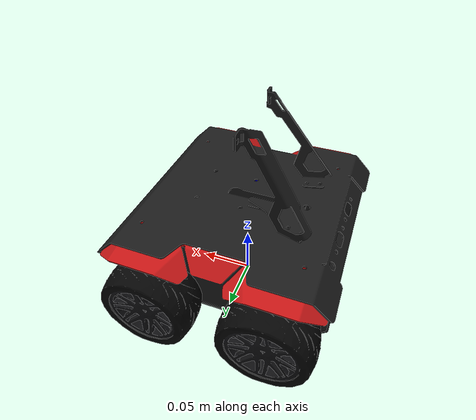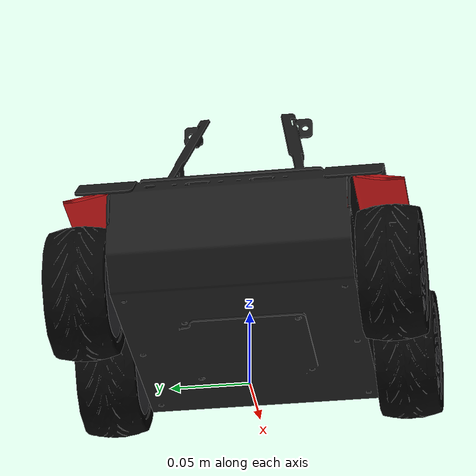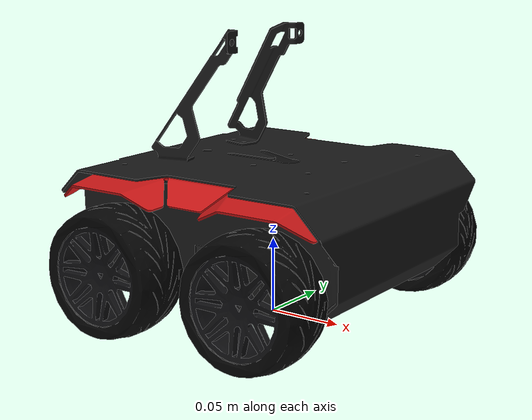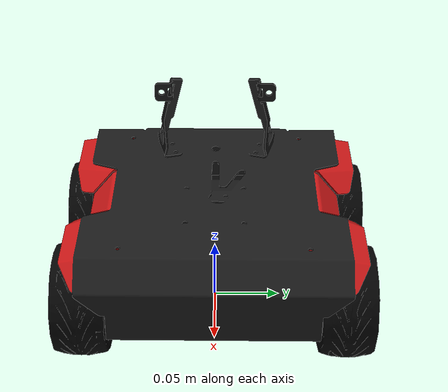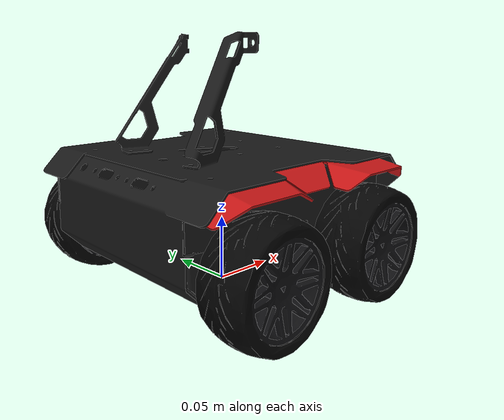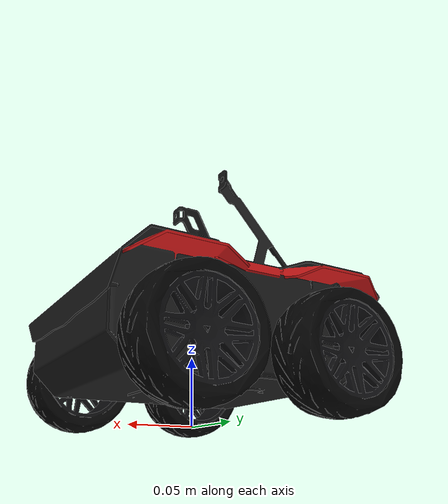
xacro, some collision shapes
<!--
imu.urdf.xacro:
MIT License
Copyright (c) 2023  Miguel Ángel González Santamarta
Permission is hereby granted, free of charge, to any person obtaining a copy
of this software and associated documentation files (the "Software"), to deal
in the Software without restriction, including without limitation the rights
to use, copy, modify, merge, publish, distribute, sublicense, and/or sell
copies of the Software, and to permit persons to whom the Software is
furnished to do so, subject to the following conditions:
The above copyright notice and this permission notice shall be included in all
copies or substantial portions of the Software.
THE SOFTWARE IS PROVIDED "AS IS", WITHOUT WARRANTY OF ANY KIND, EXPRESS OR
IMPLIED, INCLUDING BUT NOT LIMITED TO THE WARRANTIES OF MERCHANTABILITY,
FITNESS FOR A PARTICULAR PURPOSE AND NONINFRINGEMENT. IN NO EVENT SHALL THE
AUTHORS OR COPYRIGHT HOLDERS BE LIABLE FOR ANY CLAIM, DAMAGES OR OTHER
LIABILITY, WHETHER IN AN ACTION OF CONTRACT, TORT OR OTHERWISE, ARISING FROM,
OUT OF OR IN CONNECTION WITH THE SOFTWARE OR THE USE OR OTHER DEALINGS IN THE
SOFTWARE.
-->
<?xml version='1.0'?>
<robot name="diff" xmlns:xacro="http://www.ros.org/wiki/xacro">
  <material name="blue"><color rgba="0 0 1 1" /></material>
  <!-- PROPERTIES -->
  <xacro:property name="wheel_radius" value="0.0425" />

  <!-- INCLUDE ROBOT MACRO -->
  <xacro:include filename="ros2_control.urdf.xacro"/>
  <xacro:include filename="body.urdf.xacro"/>
  <xacro:include filename="wheel.urdf.xacro"/>

  <!-- BODY -->
  <xacro:body wheel_radius="${wheel_radius}"/>

  <!-- WHEEL -->
  <xacro:wheel wheel_radius="${wheel_radius}" side="fl"/>
  <xacro:wheel wheel_radius="${wheel_radius}" side="fr"/>
  <xacro:wheel wheel_radius="${wheel_radius}" side="rl"/>
  <xacro:wheel wheel_radius="${wheel_radius}" side="rr"/>

  <!-- GAZEBO PLUGINS -->
  <xacro:gz_diffbot_system/>
  <xacro:controller config_file="diff" />
</robot>

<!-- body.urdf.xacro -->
<robot xmlns:xacro="http://www.ros.org/wiki/xacro">
  <!-- body defining macro -->
  <xacro:macro name="body" params="wheel_radius">
    <xacro:include filename="../common/sensors/imu.urdf.xacro"/>
    <xacro:include filename="../common/sensors/asus_xtion.urdf.xacro"/>
    <xacro:include filename="../common/sensors/hokuyo.urdf.xacro"/>

    <link name="base_footprint" />
    <joint name="base_footprint_joint" type="fixed">
      <parent link="base_footprint" />
      <child link="base_link" />
    </joint>
    <link name="base_link" />

    <joint name="base_to_body_joint" type="fixed">
      <origin xyz="0.0 0.0 ${wheel_radius}" rpy="0.0 0.0 0.0" />
      <parent link="base_link" />
      <child link="body_link" />
    </joint>

    <link name="body_link">
      <visual>
        <origin xyz="0.0 0.0 -0.0173" rpy="${pi/2} 0.0 ${pi/2}" />
        <geometry>
          <mesh filename="file://$(find test_environment)/meshes/diff/body.dae" scale="0.001 0.001 0.001" />
        </geometry>
      </visual>

      <collision>
        <geometry>
          <box size="0.197 0.150 0.080" />
        </geometry>
        <origin xyz="0.0 0.0 ${0.040 - 0.02}" rpy="0.0 0.0 0.0" />
      </collision>

      <inertial>
        <mass value="1.728" />
        <inertia ixx="0.004162" ixy="0.0"     ixz="0.0"
                                iyy="0.00651" iyz="0.0"
                                              izz="0.008828" />
        <origin xyz="0.0 0.0 ${0.040 - 0.02}" rpy="0.0 0.0 0.0" />
      </inertial>
    </link>

    <joint name="body_to_cover_joint" type="fixed">
      <origin xyz="0.0 0.0 0.0603" rpy="0.0 0.0 0.0" />
      <parent link="body_link" />
      <child link="cover_link" />
    </joint>

    <link name="cover_link" />

    <xacro:sensor_hokuyo prefix="laser" parent="body_link">
      <origin xyz="0.07 0 0.08" rpy="0 0 0"/>
    </xacro:sensor_hokuyo>
    <xacro:sensor_imu prefix="imu" parent="body_link">
        <origin xyz="0.003 -0.0495 0.04332" rpy="0.0 0.0 0.0" />
    </xacro:sensor_imu>

  </xacro:macro>
</robot>

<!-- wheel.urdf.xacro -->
<robot xmlns:xacro="http://www.ros.org/wiki/xacro">
  <!-- wheel defining macro -->
  <xacro:macro name="wheel" params="side wheel_radius">

    <xacro:property name="wheel_separation_x" value="0.106" />

    <xacro:property name="wheel_file" value="wheel" />
    <xacro:property name="wheel_thickness" value="0.036" />
    <xacro:property name="mass" value="0.074" />

    <xacro:property name="ixx" value="0.000041" />
    <xacro:property name="iyy" value="0.000067" />
    <xacro:property name="izz" value="0.000041" />

    <xacro:property name="wheel_separation_y" value="0.192" />

    <xacro:if value="${side == 'fl'}">
      <xacro:property name="x" value="${wheel_separation_x/2.0}" />
      <xacro:property name="y" value="${wheel_separation_y/2.0}" />
      <xacro:property name="mesh" value="file://$(find test_environment)/meshes/diff/${wheel_file}_l.dae" />
      <xacro:property name="visual_rotation" value="${pi/2} 0.0 0.0" />
      <xacro:property name="fdir" value="1.0 -1.0 0.0" />
    </xacro:if>
    <xacro:if value="${side == 'fr'}">
      <xacro:property name="x" value="${wheel_separation_x/2.0}" />
      <xacro:property name="y" value="${-wheel_separation_y/2.0}" />
      <xacro:property name="mesh" value="file://$(find test_environment)/meshes/diff/${wheel_file}_r.dae" />
      <xacro:property name="visual_rotation" value="${pi/2} 0.0 0.0" />
      <xacro:property name="fdir" value="1.0 1.0 0.0" />
    </xacro:if>
    <xacro:if value="${side == 'rl'}">
      <xacro:property name="x" value="${-wheel_separation_x/2.0}" />
      <xacro:property name="y" value="${wheel_separation_y/2.0}" />
      <xacro:property name="mesh" value="file://$(find test_environment)/meshes/diff/${wheel_file}_l.dae" />
      <xacro:property name="visual_rotation" value="${pi/2} 0.0 0.0" />
      <xacro:property name="fdir" value="1.0 1.0 0.0" />
    </xacro:if>
    <xacro:if value="${side == 'rr'}">
      <xacro:property name="x" value="${-wheel_separation_x/2.0}" />
      <xacro:property name="y" value="${-wheel_separation_y/2.0}" />
      <xacro:property name="mesh" value="file://$(find test_environment)/meshes/diff/${wheel_file}_r.dae" />
      <xacro:property name="visual_rotation" value="${pi/2} 0.0 0.0" />
      <xacro:property name="fdir" value="1.0 -1.0 0.0" />
    </xacro:if>

    <joint name="${side}_wheel_joint" type="continuous">
      <parent link="body_link" />
      <child link="${side}_wheel_link" />
      <origin xyz="${x} ${y} 0.0" rpy="0.0 0.0 0.0" />
      <axis xyz="0.0 1.0 0.0" />
      <limit effort="1.5" velocity="24.0" />
      <dynamics damping="0.001" friction="0.001" />
    </joint>

    <link name="${side}_wheel_link">
      <visual>
        <geometry>
          <mesh filename="${mesh}" scale="1.0 1.0 1.0" />
        </geometry>
        <origin xyz="0.0 0.0 0.0" rpy="${visual_rotation}" />
      </visual>

      <collision>
        <geometry>
          <cylinder radius="${wheel_radius}" length="${wheel_thickness}" />
        </geometry>
        <origin xyz="0.0 0.0 0.0" rpy="${pi/2} 0.0 0.0" />
      </collision>

      <inertial>
        <mass value="${mass}" />
        <inertia ixx="${ixx}" ixy="0.0"    ixz="0.0"
                              iyy="${iyy}" iyz="0.0"
                                           izz="${izz}" />
      </inertial>
    </link>

    <gazebo reference="${side}_wheel_link" xmlns:gz="http://gazeborobotics.org/schema">
      <collision>
        <surface>
          <friction>
            <ode>
              <mu>1</mu>
              <mu2>1</mu2>
              <slip1>0.035</slip1>
              <slip2>0</slip2>
              <fdir1>0 0 1</fdir1>
            </ode>
          </friction>
        </surface>
      </collision>
    </gazebo>

  </xacro:macro>
</robot>

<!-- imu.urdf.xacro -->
<robot name="sensor_imu" xmlns:xacro="http://www.ros.org/wiki/xacro">

  <xacro:macro name="sensor_imu" params="prefix parent *origin">

    <joint name="${prefix}_joint" type="fixed">
        <axis xyz="1 0 0"/>
        <xacro:insert_block name="origin"/>
        <parent link="${parent}"/>
        <child link="${prefix}_link"/>
    </joint>

    <link name="${prefix}_link">
      <inertial>
        <mass value="0.001"/>
        <origin rpy="0 0 0" xyz="0 0 0"/>
        <inertia ixx="0.0001" ixy="0" ixz="0" iyy="0.000001" iyz="0" izz="0.0001"/>
      </inertial>
      <visual>
        <origin rpy="0 0 0" xyz="0 0 0"/>
        <geometry>
          <box size="0.03 0.02 0.01"/>
        </geometry>
        <material name="blue" />
      </visual>
      <collision>
        <origin rpy="0 0 0" xyz="0 0 0"/>
        <geometry>
          <box size=".001 .001 .001"/>
        </geometry>
      </collision>
    </link>

    <gazebo reference="${prefix}_link">
        <material>Gazebo/Blue</material>
    </gazebo>

    <gazebo reference="${prefix}_link">
      <sensor name="imu_sensor" type="imu">
        <plugin filename="libgazebo_ros_imu_sensor.so" name="imu_controller">
          <ros>
            <remapping>~/out:=imu</remapping>
            <qos>
              <topic name="imu">
                <publisher>
                  <reliability>best_effort</reliability>
                </publisher>
              </topic>
            </qos>
          </ros>
          <initial_orientation_as_reference>false</initial_orientation_as_reference>
          <frame_name>${prefix}_link</frame_name>
        </plugin>

        <always_on>true</always_on>
        <update_rate>200</update_rate>
        <visualize>true</visualize>

        <imu>
          <angular_velocity>
            <x>
              <noise type="gaussian">
                <mean>0.0</mean>
                <stddev>0.0</stddev>
                <bias_mean>0.0</bias_mean>
                <bias_stddev>0.0</bias_stddev>
              </noise>
            </x>
            <y>
              <noise type="gaussian">
                <mean>0.0</mean>
                <stddev>0.0</stddev>
                <bias_mean>0.0</bias_mean>
                <bias_stddev>0.0</bias_stddev>
              </noise>
            </y>
            <z>
              <noise type="gaussian">
                <mean>0.0</mean>
                <stddev>0.0</stddev>
                <bias_mean>0.0</bias_mean>
                <bias_stddev>0.0</bias_stddev>
              </noise>
            </z>
          </angular_velocity>
          <linear_acceleration>
            <x>
              <noise type="gaussian">
                <mean>0.0</mean>
                <stddev>0.0</stddev>
                <bias_mean>0.0</bias_mean>
                <bias_stddev>0.0</bias_stddev>
              </noise>
            </x>
            <y>
              <noise type="gaussian">
                <mean>0.0</mean>
                <stddev>0.0</stddev>
                <bias_mean>0.0</bias_mean>
                <bias_stddev>0.0</bias_stddev>
              </noise>
            </y>
            <z>
              <noise type="gaussian">
                <mean>0.0</mean>
                <stddev>0.0</stddev>
                <bias_mean>0.0</bias_mean>
                <bias_stddev>0.0</bias_stddev>
              </noise>
            </z>
          </linear_acceleration>
        </imu>

      </sensor>
    </gazebo>

  </xacro:macro>

</robot>

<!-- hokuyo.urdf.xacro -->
<robot name="sensor_hokuyo" xmlns:xacro="http://www.ros.org/wiki/xacro">

  <xacro:macro name="sensor_hokuyo" params="prefix parent *origin min_angle:=-3.14159265359 max_angle:=3.14159265359">

    <joint name="${prefix}_base_joint" type="fixed">
      <xacro:insert_block name="origin" />
      <parent link="${parent}"/>
      <child link="${prefix}_base_link"/>
    </joint>

    <link name="${prefix}_base_link">
      <collision>
        <origin xyz="0 0 -0.05" rpy="0 0 0"/>
        <geometry>
          <box size="0.010 0.010 0.010"/>
        </geometry>
      </collision>

      <visual>
        <origin xyz="0 0 -0.05" rpy="0 0 0"/>
        <geometry>
            <mesh filename="file://$(find test_environment)/meshes/rocker-bogie/sensors/hokuyo/hokuyo_ust_20lx.dae"/>
        </geometry>
      </visual>

      <inertial>
        <mass value="1e-5" />
        <origin xyz="0 0 0" rpy="0 0 0"/>
        <inertia ixx="1e-6" ixy="0" ixz="0" iyy="1e-6" iyz="0" izz="1e-6" />
      </inertial>
    </link>

    <gazebo reference="${prefix}_base_link">
        <material>Gazebo/DarkGrey</material>
    </gazebo>

    <link name="${prefix}_link">
    </link>

    <joint name="${prefix}_joint" type="fixed">
      <parent link="${prefix}_base_link"/>
      <child link="${prefix}_link"/>
      <origin xyz="0.00 0 0.0" rpy="0 0 0"/>
    </joint>

    <gazebo reference="${prefix}_link">
            <sensor type="ray" name="hokuyo_sensor">
                <pose>0 0 0 0 0 0</pose>
                <visualize>true</visualize>
                <update_rate>10</update_rate>
                <ray>
                    <scan>
                        <horizontal>
                            <samples>1441</samples>
                            <resolution>1</resolution>
                            <min_angle>${min_angle}</min_angle>
                            <max_angle>${max_angle}</max_angle>
                        </horizontal>
                    </scan>
                    <range>
                        <min>0.06</min>
                        <max>5.0</max>
                        <resolution>0.001</resolution>
                    </range>
                    <noise>
                        <type>gaussian</type>
                        <mean>0.0</mean>
                        <stddev>0.0</stddev>
                    </noise>
                </ray>
                <plugin name="${prefix}_controller" filename="libgazebo_ros_ray_sensor.so">
                  <ros>
                    <remapping>~/out:=scan</remapping>
                    <qos>
                      <topic name="scan">
                        <publisher>
                          <reliability>best_effort</reliability>
                        </publisher>
                      </topic>
                    </qos>
                  </ros>
                  <output_type>sensor_msgs/LaserScan</output_type>
                  <frame_name>${prefix}_link</frame_name>
                </plugin>
            </sensor>
    </gazebo>
  </xacro:macro>

</robot>
